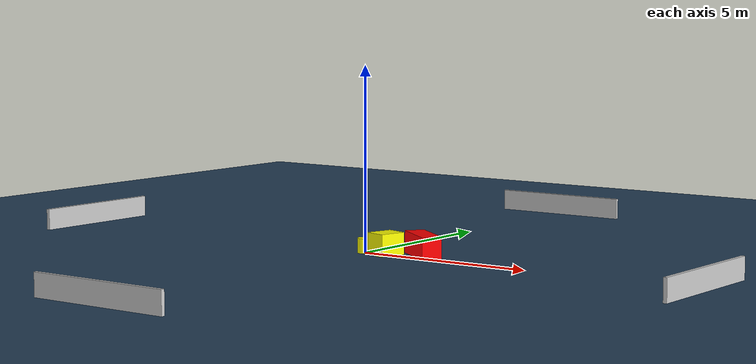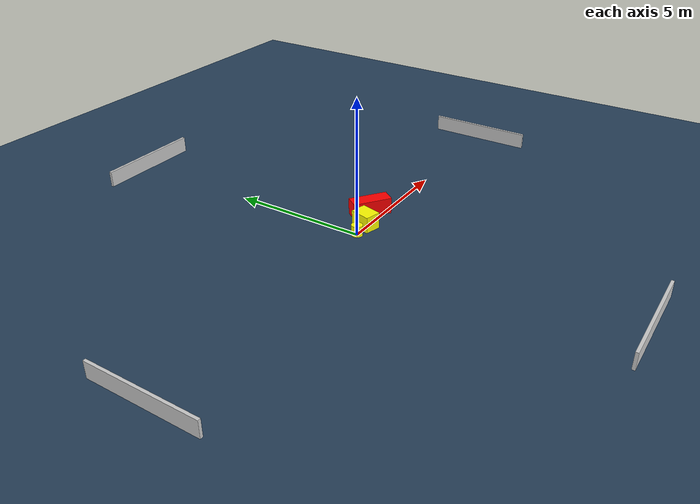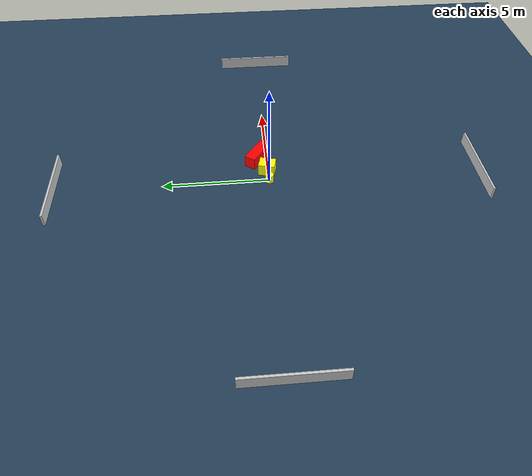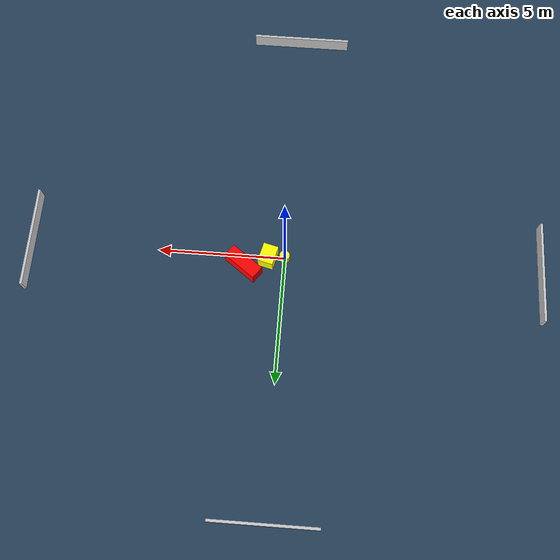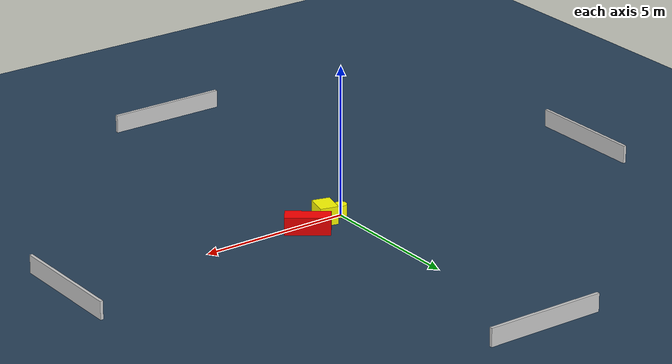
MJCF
<?xml version="1.0" ?>
<mujoco model="generated_environment">
  <option timestep="0.01" integrator="RK4" cone="elliptic"/>
  <default>
    <geom density="1"/>
  </default>
  <asset>
    <texture builtin="gradient" height="3072" name="skybox" rgb1="0.3 0.5 0.7" rgb2="0 0 0" type="skybox" width="512"/>
    <texture builtin="checker" height="300" name="groundplane" rgb1="0.2 0.3 0.4" rgb2="0.1 0.2 0.3" type="2d" width="300"/>
    <material name="groundplane" reflectance="0.2" texrepeat="5 5" texture="groundplane"/>
  </asset>
  <worldbody>
    <light dir="0 0 -1" directional="true" pos="0 0 1.5"/>
    <geom condim="3" friction="0.5 0.005 0.001" material="groundplane" name="floor" pos="0 0 0" size="0 0 0.05" type="plane"/>
    <body name="walls">
      <geom name="wall_1" condim="4" pos="-10.0 0.0 0.3" rgba="0.800000011920929 0.800000011920929 0.800000011920929 1.0" size="0.05 2.0 0.3" type="box"/>
      <geom name="wall_2" condim="4" pos="10.0 0.0 0.3" rgba="0.800000011920929 0.800000011920929 0.800000011920929 1.0" size="0.05 2.0 0.3" type="box"/>
      <geom name="wall_3" condim="4" pos="0.0 -10.0 0.3" rgba="0.800000011920929 0.800000011920929 0.800000011920929 1.0" size="2.0 0.05 0.3" type="box"/>
      <geom name="wall_4" condim="4" pos="0.0 10.0 0.3" rgba="0.800000011920929 0.800000011920929 0.800000011920929 1.0" size="2.0 0.05 0.3" type="box"/>
    </body>
    <body name="robot">
      <joint name="joint_x" type="slide" pos="0 0 0" axis="1 0 0"/>
      <joint name="joint_y" type="slide" pos="0 0 0" axis="0 1 0"/>
      <geom name="robot" type="cylinder" pos="0.0 0.0 0.2" size="0.2 0.2 0.0" mass="5.0" friction="1.0 0.005 0.0001" condim="4" rgba="1.0 1.0 0.0 1.0"/>
    </body>
    <body name="obstacle_1_movable">
      <geom name="obstacle_1_movable" condim="4" pos="0.6413050395245526 0.05622242904896237 0.3" euler="0 0 75.82318491341343" friction="0.0 0.005 0.001" rgba="1.0 1.0 0.0 1.0" size="0.38247622694826433 0.29923085209691136 0.3" type="box" mass="0.1"/>
      <joint type="free"/>
    </body>
    <body name="obstacle_2_static">
      <geom name="obstacle_2_static" condim="4" pos="1.5745503630447493 0.44121209456688165 0.3" euler="0 0 323.72733157680256" friction="0.0 0.005 0.001" rgba="1.0 0.0 0.0 1.0" size="0.724684346920978 0.2706229328565875 0.3" type="box"/>
    </body>
  </worldbody>
  <actuator>
    <motor name="actuator_x" joint="joint_x" gear="1" ctrlrange="-1 1"/>
    <motor name="actuator_y" joint="joint_y" gear="1" ctrlrange="-1 1"/>
  </actuator>
</mujoco>
